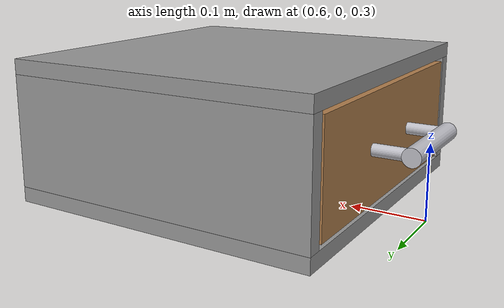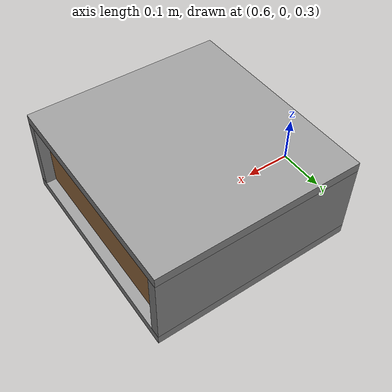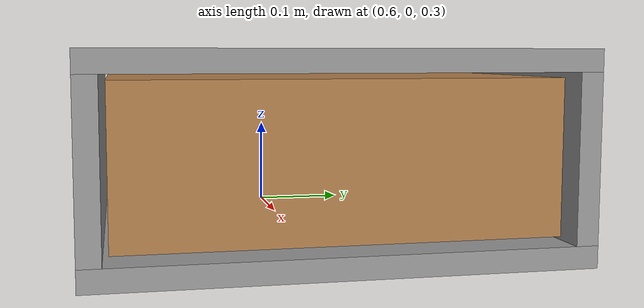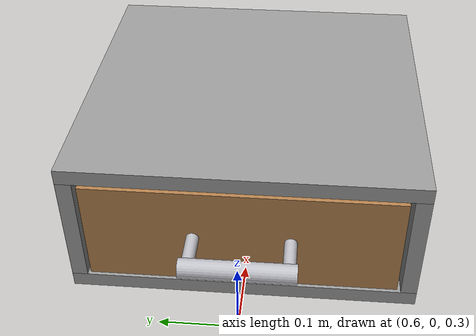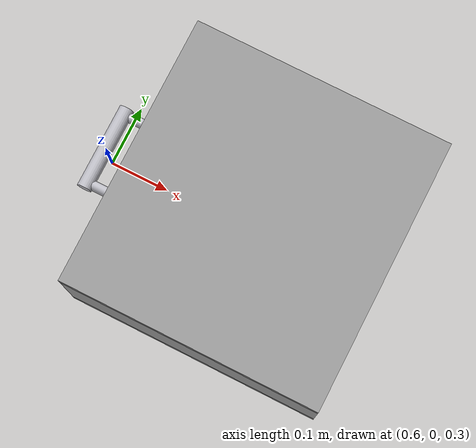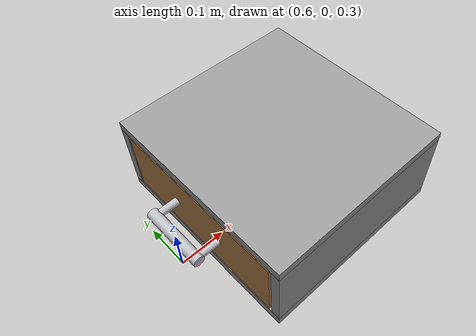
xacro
<?xml version="1.0" encoding="utf-8"?>
<robot xmlns:xacro="http://www.ros.org/wiki/xacro" name="mechanism">

  <xacro:arg name="kind" default="drawer"/>
  <xacro:arg name="x" default="0.6"/>
  <xacro:arg name="y" default="0.0"/>
  <xacro:arg name="z" default="0.4"/>
  <xacro:arg name="yaw" default="${pi}"/>
  <!-- joint damping [Ns/m or Nms/rad] and Coulomb friction [N or Nm] -->
  <xacro:arg name="damping" default="5.0"/>
  <xacro:arg name="friction" default="3.0"/>
  <xacro:arg name="mass" default="2.0"/>
  <xacro:arg name="radius" default="0.6"/>   <!-- door: hinge to handle [m] -->

  <xacro:property name="kind" value="$(arg kind)"/>
  <xacro:property name="m" value="$(arg mass)"/>
  <xacro:property name="r" value="$(arg radius)"/>
  <xacro:property name="h" value="0.05"/>     <!-- handle stand-off from front face -->

  <xacro:macro name="box_link" params="name size xyz mass material">
    <link name="${name}">
      <visual>
        <origin xyz="${xyz}"/>
        <geometry><box size="${size}"/></geometry>
      </visual>
      <collision>
        <origin xyz="${xyz}"/>
        <geometry><box size="${size}"/></geometry>
      </collision>
      <xacro:box_inertial size="${size}" xyz="${xyz}" mass="${mass}"/>
    </link>
    <gazebo reference="${name}"><material>${material}</material></gazebo>
  </xacro:macro>

  <xacro:macro name="box_inertial" params="size xyz mass">
    <xacro:property name="s" value="${[float(v) for v in size.split()]}"/>
    <inertial>
      <origin xyz="${xyz}"/>
      <mass value="${mass}"/>
      <inertia ixx="${mass/12*(s[1]**2+s[2]**2)}" iyy="${mass/12*(s[0]**2+s[2]**2)}"
               izz="${mass/12*(s[0]**2+s[1]**2)}" ixy="0" ixz="0" iyz="0"/>
    </inertial>
  </xacro:macro>

  <!-- Horizontal bar at (hx, hy, 0) in the mech_moving frame, with two
       stand-offs back to the front face at hx - h. -->
  <xacro:macro name="handle" params="hx hy">
    <link name="mech_handle">
      <visual>
        <origin xyz="${hx} ${hy} 0" rpy="${pi/2} 0 0"/>
        <geometry><cylinder radius="0.012" length="0.14"/></geometry>
        <material name="steel"><color rgba="0.75 0.75 0.78 1"/></material>
      </visual>
      <visual>
        <origin xyz="${hx - h/2} ${hy - 0.06} 0" rpy="0 ${pi/2} 0"/>
        <geometry><cylinder radius="0.008" length="${h}"/></geometry>
        <material name="steel"/>
      </visual>
      <visual>
        <origin xyz="${hx - h/2} ${hy + 0.06} 0" rpy="0 ${pi/2} 0"/>
        <geometry><cylinder radius="0.008" length="${h}"/></geometry>
        <material name="steel"/>
      </visual>
      <inertial>
        <origin xyz="${hx} ${hy} 0"/>
        <mass value="0.1"/>
        <inertia ixx="1e-4" iyy="1e-4" izz="1e-4" ixy="0" ixz="0" iyz="0"/>
      </inertial>
    </link>
    <joint name="mech_handle_joint" type="fixed">
      <parent link="mech_moving"/>
      <child link="mech_handle"/>
    </joint>
  </xacro:macro>

  <link name="world"/>
  <link name="mech_base"/>
  <joint name="mech_base_joint" type="fixed">
    <parent link="world"/>
    <child link="mech_base"/>
    <origin xyz="$(arg x) $(arg y) $(arg z)" rpy="0 0 $(arg yaw)"/>
  </joint>

  <!-- ============================ drawer ============================ -->
  <xacro:if value="${kind == 'drawer'}">
    <xacro:property name="D" value="0.40"/>  <!-- depth -->
    <xacro:property name="W" value="0.40"/>  <!-- width -->
    <xacro:property name="H" value="0.15"/>  <!-- height -->
    <xacro:property name="t" value="0.02"/>  <!-- carcass wall -->

    <!-- carcass: top, bottom, two sides, back (open at the front) -->
    <xacro:box_link name="mech_carcass_top" size="${D+t} ${W+2*t} ${t}"
                    xyz="${-h-(D+t)/2} 0 ${H/2+t/2}" mass="1.0" material="Gazebo/Grey"/>
    <xacro:box_link name="mech_carcass_bottom" size="${D+t} ${W+2*t} ${t}"
                    xyz="${-h-(D+t)/2} 0 ${-H/2-t/2}" mass="1.0" material="Gazebo/Grey"/>
    <xacro:box_link name="mech_carcass_left" size="${D+t} ${t} ${H}"
                    xyz="${-h-(D+t)/2} ${W/2+t/2} 0" mass="1.0" material="Gazebo/Grey"/>
    <xacro:box_link name="mech_carcass_right" size="${D+t} ${t} ${H}"
                    xyz="${-h-(D+t)/2} ${-W/2-t/2} 0" mass="1.0" material="Gazebo/Grey"/>
    <xacro:macro name="fix" params="child">
      <joint name="${child}_joint" type="fixed">
        <parent link="mech_base"/><child link="${child}"/>
      </joint>
    </xacro:macro>
    <xacro:fix child="mech_carcass_top"/>
    <xacro:fix child="mech_carcass_bottom"/>
    <xacro:fix child="mech_carcass_left"/>
    <xacro:fix child="mech_carcass_right"/>

    <!-- drawer body (slightly smaller than the opening, so no contact) -->
    <xacro:box_link name="mech_moving" size="${D} ${W-0.01} ${H-0.01}"
                    xyz="${-h-D/2} 0 0" mass="${m}" material="Gazebo/Wood"/>
    <joint name="mech_joint" type="prismatic">
      <parent link="mech_base"/>
      <child link="mech_moving"/>
      <axis xyz="1 0 0"/>
      <limit lower="0.0" upper="${D-0.05}" effort="1000" velocity="1.0"/>
      <dynamics damping="$(arg damping)" friction="$(arg friction)"/>
    </joint>
    <xacro:handle hx="0" hy="0"/>
  </xacro:if>

  <!-- ============================= door ============================= -->
  <xacro:if value="${kind == 'door'}">
    <xacro:property name="T" value="0.03"/>   <!-- leaf thickness -->
    <xacro:property name="Wd" value="${r+0.10}"/>
    <xacro:property name="Hd" value="0.60"/>

    <!-- hinge post (fixed) -->
    <xacro:box_link name="mech_post" size="0.04 0.04 ${Hd}"
                    xyz="${-h-0.02} ${-r-0.03} 0" mass="1.0" material="Gazebo/Grey"/>
    <joint name="mech_post_joint" type="fixed">
      <parent link="mech_base"/><child link="mech_post"/>
    </joint>

    <!-- leaf: frame at the hinge, in the front plane of the leaf -->
    <xacro:box_link name="mech_moving" size="${T} ${Wd} ${Hd}"
                    xyz="${-T/2} ${Wd/2} 0" mass="${m}" material="Gazebo/Wood"/>
    <joint name="mech_joint" type="revolute">
      <parent link="mech_base"/>
      <child link="mech_moving"/>
      <origin xyz="${-h} ${-r} 0"/>
      <axis xyz="0 0 -1"/>   <!-- opening moves the handle towards +x_M -->
      <limit lower="0.0" upper="${pi/2}" effort="1000" velocity="2.0"/>
      <dynamics damping="$(arg damping)" friction="$(arg friction)"/>
    </joint>
    <xacro:handle hx="${h}" hy="${r}"/>
  </xacro:if>

  <!-- ground truth for the logger only -->
  <gazebo>
    <plugin name="mechanism_joint_state" filename="libgazebo_ros_joint_state_publisher.so">
      <ros>
        <namespace>/mechanism</namespace>
        <remapping>~/out:=joint_states</remapping>
      </ros>
      <update_rate>100</update_rate>
      <joint_name>mech_joint</joint_name>
    </plugin>
  </gazebo>

</robot>
